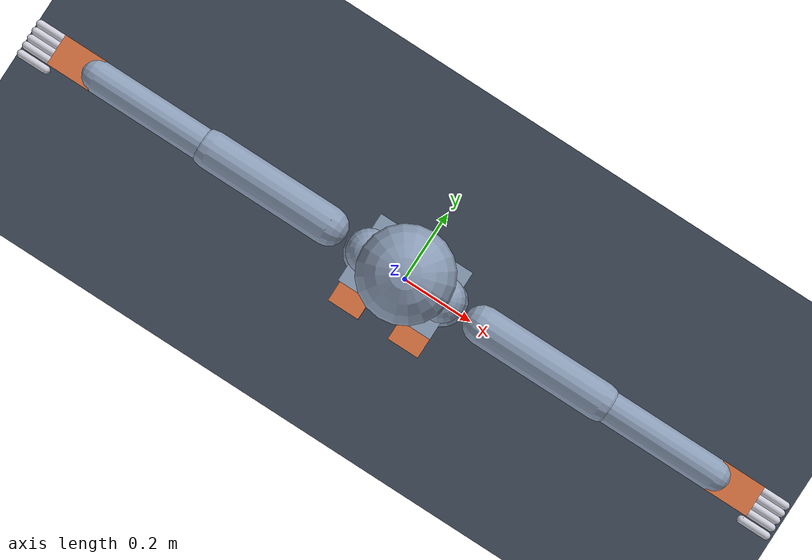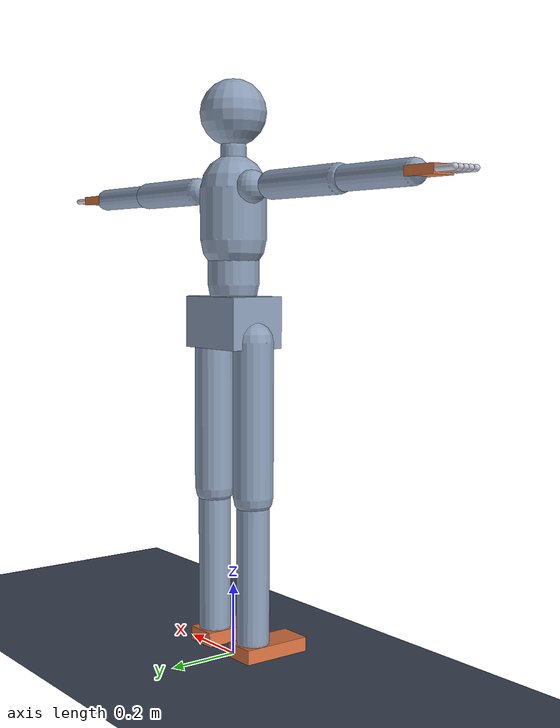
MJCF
<mujoco model="vla_generated">
      <option gravity="0 0 0"/>
      <visual><quality offsamples="0"/>
        <headlight ambient="0.45 0.45 0.45" diffuse="0.7 0.7 0.7"/></visual>
      <asset><texture name="grid" type="2d" builtin="checker" width="256"
          height="256" rgb1="0.20 0.24 0.30" rgb2="0.26 0.30 0.36"/>
        <material name="grid" texture="grid" texrepeat="6 6"/></asset>
      <worldbody>
        <geom name="floor" type="plane" size="4 4 0.05" material="grid"/>
        <light pos="0 -2 3" dir="0 0.5 -1"/>
        <body name="pelvis" pos="0 0 0.93"><freejoint name="root"/>
          <geom type="box" size="0.11 0.08 0.07" rgba="0.55 0.62 0.72 1"/>
          <body name="spine" pos="0 0 0.10"><joint name="spine" type="ball"/>
            <geom type="capsule" fromto="0 0 0 0 0 0.10" size="0.07" rgba="0.55 0.62 0.72 1"/>
            <body name="chest" pos="0 0 0.12"><joint name="chest" type="ball"/>
              <geom type="capsule" fromto="0 0 0 0 0 0.14" size="0.09" rgba="0.55 0.62 0.72 1"/>
              <body name="neck" pos="0 0 0.20"><joint name="neck" type="ball"/>
                <geom type="capsule" fromto="0 0 0 0 0 0.05" size="0.035" rgba="0.55 0.62 0.72 1"/>
                <body name="head" pos="0 0 0.06"><joint name="head" type="ball"/>
                  <geom type="sphere" pos="0 0 0.08" size="0.09" rgba="0.55 0.62 0.72 1"/></body></body>
              <body name="left_shoulder" pos="0.08 0 0.14">
                <geom type="sphere" size="0.045" rgba="0.55 0.62 0.72 1"/>
                <body name="left_upper_arm" pos="0.09 0 0">
                  <joint name="left_upper_arm" type="ball"/>
                  <geom type="capsule" fromto="0 0 0 0.26 0 0" size="0.038" rgba="0.55 0.62 0.72 1"/>
                  <body name="left_lower_arm" pos="0.26 0 0">
                    <joint name="left_lower_arm" type="ball"/>
                    <geom type="capsule" fromto="0 0 0 0.25 0 0" size="0.032" rgba="0.55 0.62 0.72 1"/>
                    <body name="left_hand" pos="0.25 0 0">
                      <joint name="left_hand" type="ball"/>
                      <geom type="box" pos="0.045 0 0" size="0.045 0.032 0.012" rgba="0.85 0.45 0.25 1"/>
                      <body name="left_thumb" pos="0.088 -0.042 0"><joint name="left_finger_thumb" type="hinge" axis="0 1 0" range="0 2.2" limited="true"/><geom type="capsule" fromto="0 0 0 0.055 0 0" size="0.008" rgba="0.8 0.8 0.85 1"/></body><body name="left_index" pos="0.088 -0.024 0"><joint name="left_finger_index" type="hinge" axis="0 1 0" range="0 2.2" limited="true"/><geom type="capsule" fromto="0 0 0 0.055 0 0" size="0.008" rgba="0.8 0.8 0.85 1"/></body><body name="left_middle" pos="0.088 -0.008 0"><joint name="left_finger_middle" type="hinge" axis="0 1 0" range="0 2.2" limited="true"/><geom type="capsule" fromto="0 0 0 0.055 0 0" size="0.008" rgba="0.8 0.8 0.85 1"/></body><body name="left_ring" pos="0.088 0.008 0"><joint name="left_finger_ring" type="hinge" axis="0 1 0" range="0 2.2" limited="true"/><geom type="capsule" fromto="0 0 0 0.055 0 0" size="0.008" rgba="0.8 0.8 0.85 1"/></body><body name="left_little" pos="0.088 0.024 0"><joint name="left_finger_little" type="hinge" axis="0 1 0" range="0 2.2" limited="true"/><geom type="capsule" fromto="0 0 0 0.055 0 0" size="0.008" rgba="0.8 0.8 0.85 1"/></body></body></body></body></body>
              <body name="right_shoulder" pos="-0.08 0 0.14">
                <geom type="sphere" size="0.045" rgba="0.55 0.62 0.72 1"/>
                <body name="right_upper_arm" pos="-0.09 0 0">
                  <joint name="right_upper_arm" type="ball"/>
                  <geom type="capsule" fromto="0 0 0 -0.26 0 0" size="0.038" rgba="0.55 0.62 0.72 1"/>
                  <body name="right_lower_arm" pos="-0.26 0 0">
                    <joint name="right_lower_arm" type="ball"/>
                    <geom type="capsule" fromto="0 0 0 -0.25 0 0" size="0.032" rgba="0.55 0.62 0.72 1"/>
                    <body name="right_hand" pos="-0.25 0 0">
                      <joint name="right_hand" type="ball"/>
                      <geom type="box" pos="-0.045 0 0" size="0.045 0.032 0.012" rgba="0.85 0.45 0.25 1"/>
                      <body name="right_thumb" pos="-0.088 -0.042 0"><joint name="right_finger_thumb" type="hinge" axis="0 -1 0" range="0 2.2" limited="true"/><geom type="capsule" fromto="0 0 0 -0.055 0 0" size="0.008" rgba="0.8 0.8 0.85 1"/></body><body name="right_index" pos="-0.088 -0.024 0"><joint name="right_finger_index" type="hinge" axis="0 -1 0" range="0 2.2" limited="true"/><geom type="capsule" fromto="0 0 0 -0.055 0 0" size="0.008" rgba="0.8 0.8 0.85 1"/></body><body name="right_middle" pos="-0.088 -0.008 0"><joint name="right_finger_middle" type="hinge" axis="0 -1 0" range="0 2.2" limited="true"/><geom type="capsule" fromto="0 0 0 -0.055 0 0" size="0.008" rgba="0.8 0.8 0.85 1"/></body><body name="right_ring" pos="-0.088 0.008 0"><joint name="right_finger_ring" type="hinge" axis="0 -1 0" range="0 2.2" limited="true"/><geom type="capsule" fromto="0 0 0 -0.055 0 0" size="0.008" rgba="0.8 0.8 0.85 1"/></body><body name="right_little" pos="-0.088 0.024 0"><joint name="right_finger_little" type="hinge" axis="0 -1 0" range="0 2.2" limited="true"/><geom type="capsule" fromto="0 0 0 -0.055 0 0" size="0.008" rgba="0.8 0.8 0.85 1"/></body></body></body></body></body></body></body>
          <body name="left_upper_leg" pos="0.09 0 -0.05">
            <joint name="left_upper_leg" type="ball"/>
            <geom type="capsule" fromto="0 0 0 0 0 -0.42" size="0.055" rgba="0.55 0.62 0.72 1"/>
            <body name="left_lower_leg" pos="0 0 -0.42">
              <joint name="left_lower_leg" type="ball"/>
              <geom type="capsule" fromto="0 0 0 0 0 -0.40" size="0.045" rgba="0.55 0.62 0.72 1"/>
              <body name="left_foot" pos="0 0 -0.40">
                <joint name="left_foot" type="ball"/>
                <geom type="box" pos="0 -0.05 -0.025" size="0.045 0.10 0.02" rgba="0.85 0.45 0.25 1"/>
              </body></body></body>
          <body name="right_upper_leg" pos="-0.09 0 -0.05">
            <joint name="right_upper_leg" type="ball"/>
            <geom type="capsule" fromto="0 0 0 0 0 -0.42" size="0.055" rgba="0.55 0.62 0.72 1"/>
            <body name="right_lower_leg" pos="0 0 -0.42">
              <joint name="right_lower_leg" type="ball"/>
              <geom type="capsule" fromto="0 0 0 0 0 -0.40" size="0.045" rgba="0.55 0.62 0.72 1"/>
              <body name="right_foot" pos="0 0 -0.40">
                <joint name="right_foot" type="ball"/>
                <geom type="box" pos="0 -0.05 -0.025" size="0.045 0.10 0.02" rgba="0.85 0.45 0.25 1"/>
              </body></body></body>
        </body>
      </worldbody>
    </mujoco>
